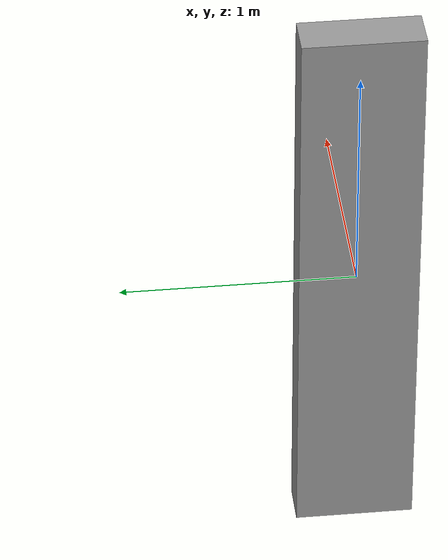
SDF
<?xml version='1.0'?>
<sdf version='1.7'>
  <model name='Objeto3_clone_3'>
    <link name='link_3'>
      <inertial>
        <mass>0.230988</mass>
        <inertia>
          <ixx>0.123228</ixx>
          <ixy>0</ixy>
          <ixz>0</ixz>
          <iyy>0.118879</iyy>
          <iyz>0</iyz>
          <izz>0.00563731</izz>
        </inertia>
        <pose>0 0 0 0 -0 0</pose>
      </inertial>
      <pose>-4e-06 -5e-06 3e-06 0 -0 0</pose>
      <gravity>1</gravity>
      <self_collide>0</self_collide>
      <kinematic>0</kinematic>
      <enable_wind>0</enable_wind>
      <visual name='visual'>
        <pose>0 0 0 0 -0 0</pose>
        <geometry>
          <box>
            <size>0.182906 0.509321 2.47839</size>
          </box>
        </geometry>
        <material>
          <lighting>1</lighting>
          <script>
            <uri>file://media/materials/scripts/gazebo.material</uri>
            <name>Gazebo/Grey</name>
          </script>
          <shader type='pixel'>
            <normal_map>__default__</normal_map>
          </shader>
          <ambient>1 1 1 0</ambient>
          <diffuse>0.7 0.7 0.7 1</diffuse>
          <specular>0.01 0.01 0.01 1</specular>
          <emissive>0 0 0 1</emissive>
        </material>
        <transparency>0</transparency>
        <cast_shadows>1</cast_shadows>
      </visual>
      <collision name='collision'>
        <laser_retro>0</laser_retro>
        <max_contacts>10</max_contacts>
        <pose>0 0 0 0 -0 0</pose>
        <geometry>
          <box>
            <size>0.182906 0.509321 2.47839</size>
          </box>
        </geometry>
        <surface>
          <friction>
            <ode>
              <mu>1</mu>
              <mu2>1</mu2>
              <fdir1>0 0 0</fdir1>
              <slip1>0</slip1>
              <slip2>0</slip2>
            </ode>
            <torsional>
              <coefficient>1</coefficient>
              <patch_radius>0</patch_radius>
              <surface_radius>0</surface_radius>
              <use_patch_radius>1</use_patch_radius>
              <ode>
                <slip>0</slip>
              </ode>
            </torsional>
          </friction>
          <bounce>
            <restitution_coefficient>0</restitution_coefficient>
            <threshold>1e+06</threshold>
          </bounce>
          <contact>
            <collide_without_contact>0</collide_without_contact>
            <collide_without_contact_bitmask>1</collide_without_contact_bitmask>
            <collide_bitmask>1</collide_bitmask>
            <ode>
              <soft_cfm>0</soft_cfm>
              <soft_erp>0.2</soft_erp>
              <kp>1e+13</kp>
              <kd>1</kd>
              <max_vel>0.01</max_vel>
              <min_depth>0</min_depth>
            </ode>
            <bullet>
              <split_impulse>1</split_impulse>
              <split_impulse_penetration_threshold>-0.01</split_impulse_penetration_threshold>
              <soft_cfm>0</soft_cfm>
              <soft_erp>0.2</soft_erp>
              <kp>1e+13</kp>
              <kd>1</kd>
            </bullet>
          </contact>
        </surface>
      </collision>
    </link>
    <static>0</static>
    <allow_auto_disable>1</allow_auto_disable>
  </model>
</sdf>
